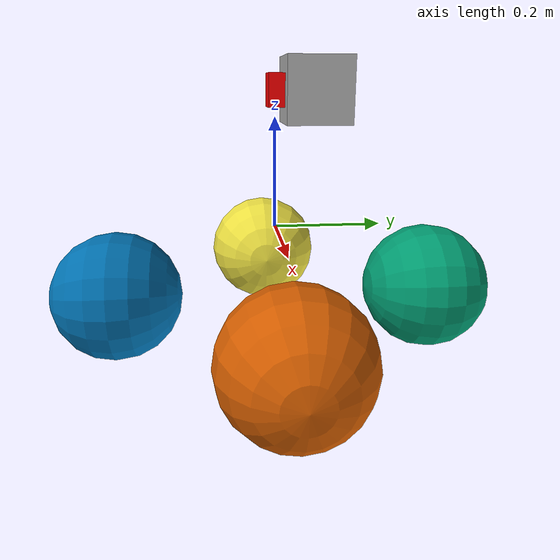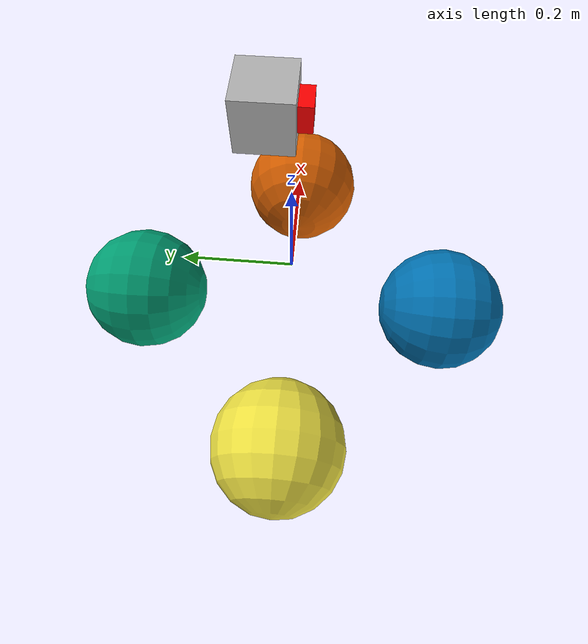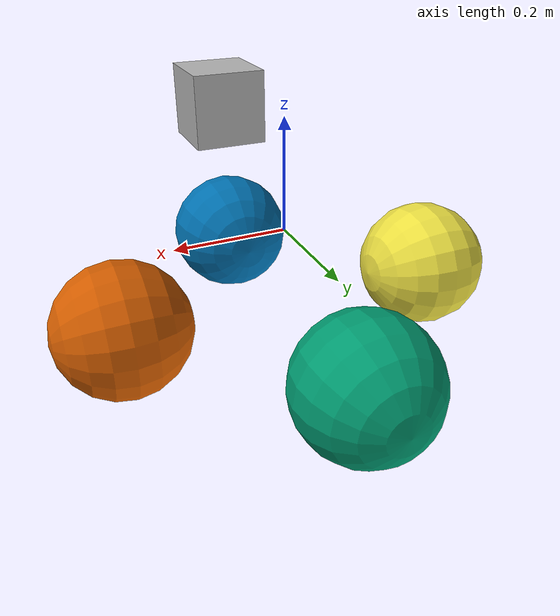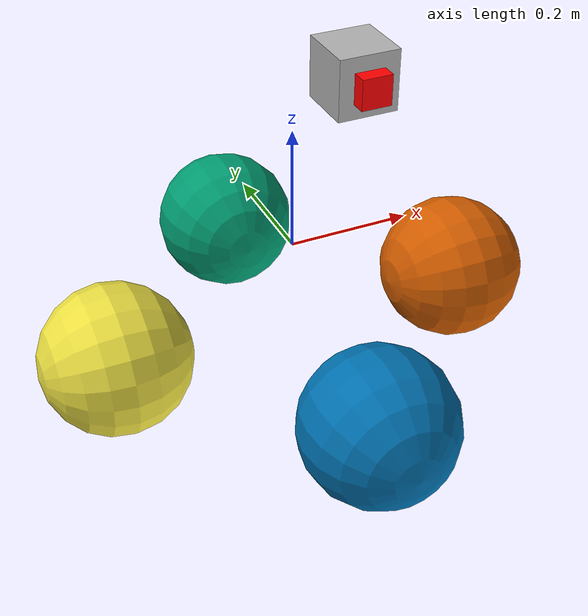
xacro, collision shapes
<?xml version="1.0"?>
<robot  name="omnishot" xmlns:xacro="http://www.ros.org/wiki/xacro"
  xmlns:sensor="http://playerstage.sourceforge.net/gazebo/xmlschema/#sensor"
      xmlns:controller="http://playerstage.sourceforge.net/gazebo/xmlschema/#controller"
      xmlns:interface="http://playerstage.sourceforge.net/gazebo/xmlschema/#interface">

  <!-- Included URDF/XACRO Files -->
  <xacro:include filename="$(find omni_shot)/urdf/materials.urdf.xacro" />
  <xacro:include filename="$(find omni_shot)/urdf/ball_temp.urdf.xacro" />

  <!-- PROPERTY LIST -->
  <!--All units in m-kg-s-radians unit system -->
  <property name="M_PI" value="3.1415926535897931" />

  <!-- Main Body-base -->
  <property name="base_size" value=".84" />
  <property name="base_height" value="0.66" />
  <property name="leg" value="0.3" />
  <property name="base_mass" value="300" /> <!-- in kg-->
 <property name="M_SCALE" value="1" />
  <!--Inertial macros for the box and cylinder. Units are kg*m^2-->
  <macro name="box_inertia" params="m x y z">
    <inertia  ixx="${m*(y*y+z*z)/12}" ixy = "0" ixz = "0"
              iyy="${m*(x*x+z*z)/12}" iyz = "0"
              izz="${m*(x*x+z*z)/12}" />
  </macro>

    <xacro:macro name="default_inertial" params="mass">
               <inertial>
                       <mass value="${mass}" />
                       <inertia ixx="1.0" ixy="0.0" ixz="0.0"
                                iyy="1.0" iyz="0.0"
                                izz="1.0" />
               </inertial>
  </xacro:macro>

  <!-- BASE-FOOTPRINT -->
  <!-- base_footprint is a fictitious link(frame) that is on the ground right below base_link origin -->
  <link name="base_footprint">
      <visual>
      <geometry>
              <box size="0.001 0.001 0.001"/>
          </geometry>
      <origin rpy="0 0 0" xyz="0 0 0"/>
      </visual>
    <box_inertia  m="${base_mass}" x="${base_size}" y="${base_size}" z="${base_height}"/>
  </link>

  #<xacro:include filename="$(find omni_shot)/urdf/omnibot.gazebo" />

  <gazebo reference="base_footprint">
    <turnGravityOff>false</turnGravityOff>
  </gazebo>

  <joint name="base_footprint_joint" type="fixed">
  <origin xyz="0 0 ${ball_radius - base_z_origin_to_ball_origin}" rpy="0 0 0" />
    <parent link="base_footprint"/>
    <child link="base_link" />
  </joint>

  <!-- BASE-LINK -->
  <!--Actual body/chassis of the robot-->
  <link name="base_link">

    <visual>
      <origin xyz="0 0 .38" rpy="0 0 0" />
      <geometry>
         <mesh filename="file:///home/nathaniel/Documents/Omnibot/code/catkin_ws/src/omni_shot/models/omniShotFlip.stl" scale="${M_SCALE} ${M_SCALE} ${M_SCALE}"/>
      </geometry>
      <material name="Yellow" />
    </visual>
    <collision>
      <geometry>
              <box size="0 0 0"/>
      </geometry>
    </collision>
     <box_inertia  m="${base_mass}" x="${base_size}" y="${base_size}" z="${base_height}"/>
  </link>

  <gazebo reference="base_link">
    <material>Gazebo/Yellow</material>
    <turnGravityOff>false</turnGravityOff>
  </gazebo>

  <!-- WHEELs -->

 <ball name="m1" parent="base_link" x="0"  y="${leg}"  move="0"/>
 <ball name="m2" parent="base_link" x="${-leg}" y="0"  move="1"/>
 <ball name="m3" parent="base_link" x="0"  y="${-leg}" move="0"/>
 <ball name="m4" parent="base_link" x="${leg}"  y="0"  move="1"/>

>

 <!-- Camera -->

<joint name="camera_joint" type="fixed">
    <axis xyz="0 1 0" />
    <origin xyz="0.125 0 0.125" rpy="0 0 0"/>
    <parent link="base_link"/>
    <child link="camera_link"/>
  </joint>

  <link name="camera_link">
    <collision>
      <origin xyz="0 0 0" rpy="0 0 0"/>
      <geometry>
  <box size="0.05 0.05 0.05"/>
      </geometry>
    </collision>

    <visual>
      <origin xyz="0 0 0" rpy="0 0 0"/>
      <geometry>
  <box size="0.05 0.05 0.05"/>
      </geometry>
      <material name="red">
  <color rgba="1 0 0 1"/>
      </material>
    </visual>

    <inertial>
      <mass value="1e-5" />
      <origin xyz="0 0 0" rpy="0 0 0"/>
      <inertia ixx="1e-6" ixy="0" ixz="0" iyy="1e-6" iyz="0" izz="1e-6" />
    </inertial>
  </link>

  <!-- Hokuyo joint -->
  <joint name="hokuyo_joint" type="fixed">
    <origin xyz="0.125 0.05 0.125" rpy="0 0 0"/>
    <parent link="base_link"/>
    <axis xyz="0 1 0" />
    <child link="hokuyo_link"/>
  </joint>

  <!-- Hokuyo Laser -->
  <link name="hokuyo_link">
    <collision>
      <origin xyz="0 0 0" rpy="0 0 0"/>
      <geometry>
  <box size="0.1 0.1 0.1"/>
      </geometry>
    </collision>

    <visual>
      <origin xyz="0 0 0" rpy="0 0 0"/>
      <geometry>
        <mesh filename="package://omni_shot/models/hokuyo.dae"/>
      </geometry>
    </visual>

    <inertial>
      <mass value="1e-5" />
      <origin xyz="0 0 0" rpy="0 0 0"/>
      <inertia ixx="1e-6" ixy="0" ixz="0" iyy="1e-6" iyz="0" izz="1e-6" />
    </inertial>
  </link>

 <gazebo>
  <plugin name="object_controller" filename="libgazebo_ros_planar_move.so">
  <robotNamespace>/</robotNamespace>
    <commandTopic>cmd_vel</commandTopic>

    <odometryTopic>odom</odometryTopic>
    <odometryFrame>odom</odometryFrame>
    <odometryRate>20.0</odometryRate>
    <robotBaseFrame>base_footprint</robotBaseFrame>

  </plugin>
</gazebo>

</robot>

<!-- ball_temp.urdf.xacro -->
<robot name="ball" xmlns:xacro="http://www.ros.org/wiki/xacro">

  <!-- balls -->
  <property name="ball_radius" value="0.121285" />
  <property name="ball_mass" value="0.625" /> <!-- in kg-->

  <property name="base_x_origin_to_ball_origin" value="0.25" />
  <property name="base_y_origin_to_ball_origin" value="0.3" />
  <property name="base_z_origin_to_ball_origin" value="0.0" />

  <macro name="sphere_inertia" params="m r">
    <inertia  ixx="${(2*m*r*r)/5}" ixy = "0" ixz = "0"
              iyy="${(2*m*r*r)/5}" iyz = "0"
              izz="${(2*m*r*r)/5}" />
  </macro>

  <xacro:macro name="ball" params="name parent x y  move"> <!--fb : front, back ; lr: left, right -->

    <link name="${name}_ball">
       <collision>
        <origin xyz="0 0 0" rpy="${(M_PI/2)} 0 0" />
        <geometry>
          <sphere radius="${ball_radius}" />
        </geometry>
      </collision>
      <inertial>
        <mass value="${ball_mass}" />
        <origin xyz="0 0 0" />
        <sphere_inertia  m="${ball_mass}" r="${ball_radius}" />
      </inertial>

    </link>

    <joint name="${name}_ball_joint" type="fixed">
      <parent link="${parent}"/>
      <child link="${name}_ball"/>
      <origin xyz="${x} ${y} -0.25" rpy="0 0 ${move*(M_PI/2)}" />
      <axis xyz="0 1 0" rpy="0 0 0" />

    </joint>

  </xacro:macro>
</robot>
